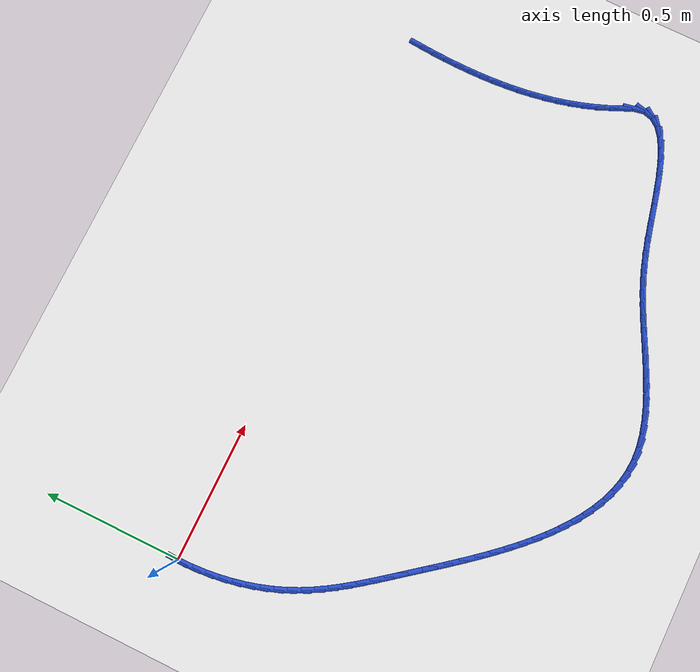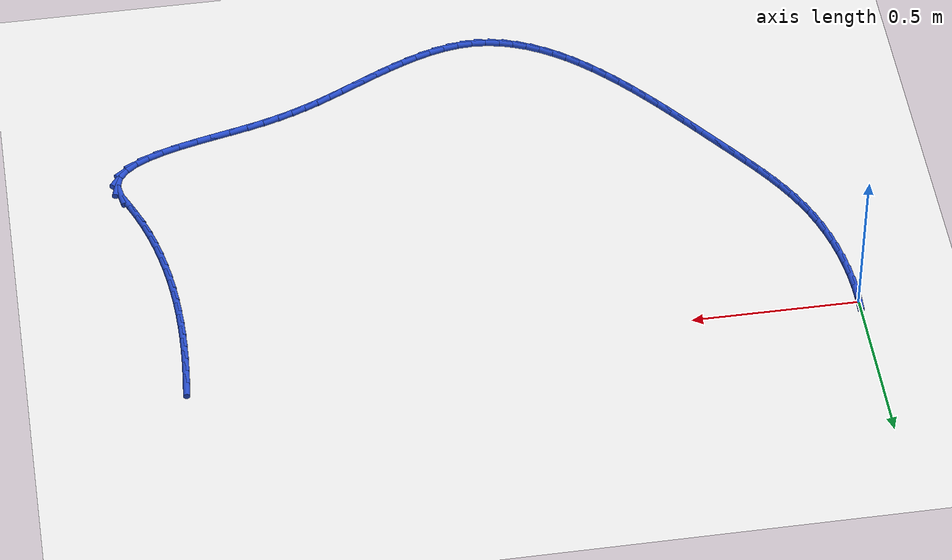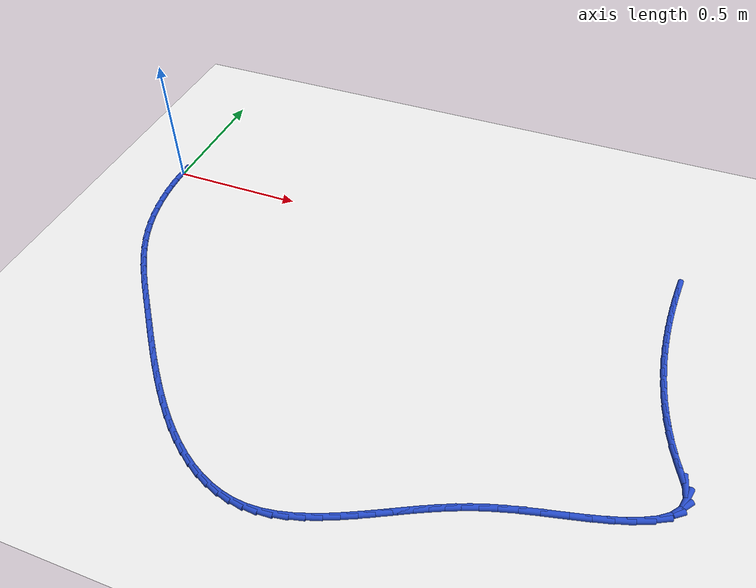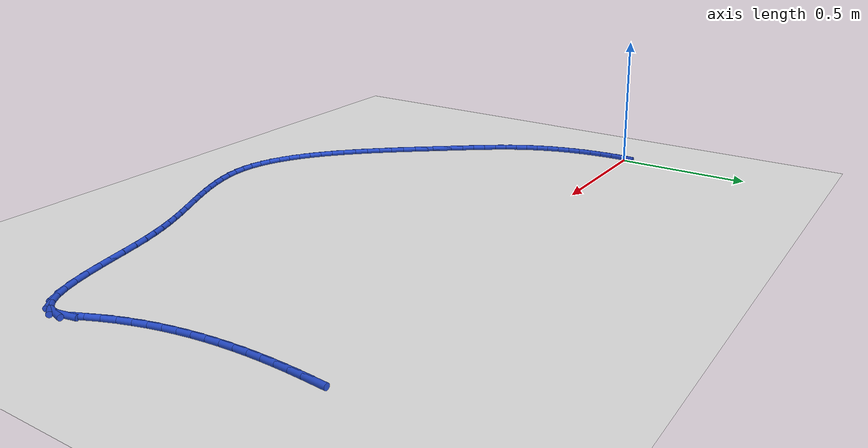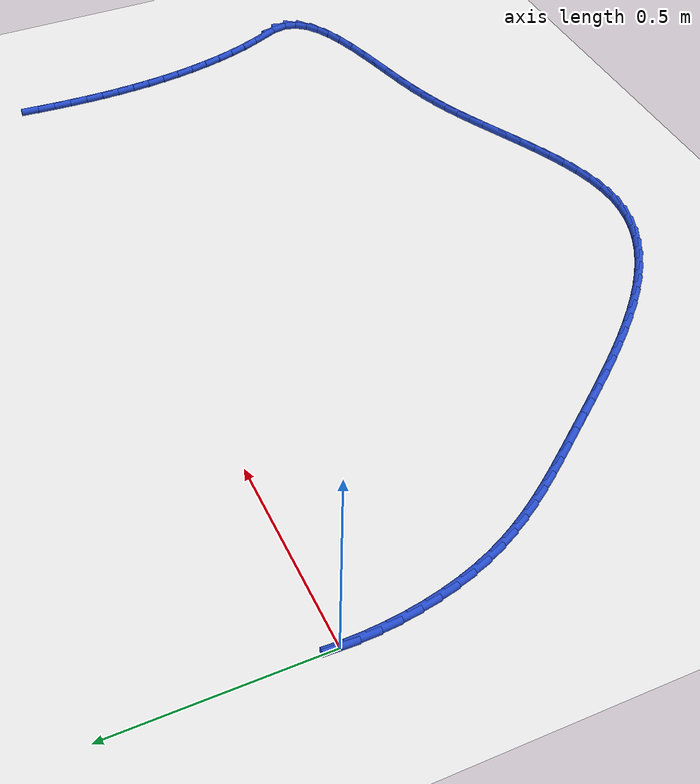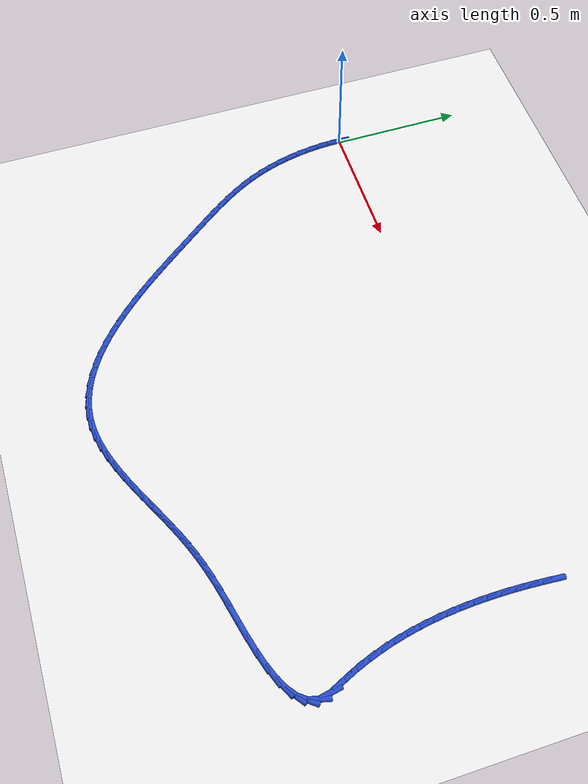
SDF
<sdf version="1.6">
 <world name="default">
  <model name="ground_plane">
   <static>1</static>
   <link name="link">
    <collision name="collision">
     <geometry><plane><normal>0 0 1</normal><size>100 100</size></plane></geometry>
     <surface><friction><ode><mu>100</mu><mu2>50</mu2></ode></friction></surface>
    </collision>
    <visual name="visual">
     <cast_shadows>0</cast_shadows>
     <geometry><plane><normal>0 0 1</normal><size>100 100</size></plane></geometry>
     <material>
      <script><uri>file://media/materials/scripts/gazebo.material</uri><name>Gazebo/WhiteGlow</name></script>
     </material>
    </visual>
   </link>
  </model>
  <model name="line">
   <link name="link_0">
    <pose>1.214306433183765e-17 -4.163336342344337e-17 0.01 0 1.57 1.5372497949093846</pose>
    <collision name="collision">
     <geometry><cylinder><radius>0.01</radius><length>0.08</length></cylinder></geometry>
    </collision>
    <visual name="visual">
     <material>
      <script><name>Gazebo/Blue</name><uri>file://media/materials/scripts/gazebo.material</uri></script>
     </material>
     <geometry><cylinder><radius>0.01</radius><length>0.08</length></cylinder></geometry>
    </visual>
   </link>
   <link name="link_81">
    <pose>1.9968895284810229 0.045796064665575204 0.01 0 1.57 1.4966531099366374</pose>
    <collision name="collision">
     <geometry><cylinder><radius>0.01</radius><length>0.08</length></cylinder></geometry>
    </collision>
    <visual name="visual">
     <material>
      <script><name>Gazebo/Blue</name><uri>file://media/materials/scripts/gazebo.material</uri></script>
     </material>
     <geometry><cylinder><radius>0.01</radius><length>0.08</length></cylinder></geometry>
    </visual>
   </link>
   <link name="link_82">
    <pose>1.9934196872863084 -0.0009173213176486648 0.01 0 1.57 1.5141625841012647</pose>
    <collision name="collision">
     <geometry><cylinder><radius>0.01</radius><length>0.08</length></cylinder></geometry>
    </collision>
    <visual name="visual">
     <material>
      <script><name>Gazebo/Blue</name><uri>file://media/materials/scripts/gazebo.material</uri></script>
     </material>
     <geometry><cylinder><radius>0.01</radius><length>0.08</length></cylinder></geometry>
    </visual>
   </link>
   <link name="link_83">
    <pose>1.9907547981119165 -0.047921798394054825 0.01 0 1.57 1.5336395725088936</pose>
    <collision name="collision">
     <geometry><cylinder><radius>0.01</radius><length>0.08</length></cylinder></geometry>
    </collision>
    <visual name="visual">
     <material>
      <script><name>Gazebo/Blue</name><uri>file://media/materials/scripts/gazebo.material</uri></script>
     </material>
     <geometry><cylinder><radius>0.01</radius><length>0.08</length></cylinder></geometry>
    </visual>
   </link>
   <link name="link_84">
    <pose>1.9889988372093812 -0.09515823640888879 0.01 0 1.57 1.5551243798746</pose>
    <collision name="collision">
     <geometry><cylinder><radius>0.01</radius><length>0.08</length></cylinder></geometry>
    </collision>
    <visual name="visual">
     <material>
      <script><name>Gazebo/Blue</name><uri>file://media/materials/scripts/gazebo.material</uri></script>
     </material>
     <geometry><cylinder><radius>0.01</radius><length>0.08</length></cylinder></geometry>
    </visual>
   </link>
   <link name="link_85">
    <pose>1.9882557808302388 -0.1425675052073952 0.01 0 1.57 -1.5629303055799435</pose>
    <collision name="collision">
     <geometry><cylinder><radius>0.01</radius><length>0.08</length></cylinder></geometry>
    </collision>
    <visual name="visual">
     <material>
      <script><name>Gazebo/Blue</name><uri>file://media/materials/scripts/gazebo.material</uri></script>
     </material>
     <geometry><cylinder><radius>0.01</radius><length>0.08</length></cylinder></geometry>
    </visual>
   </link>
   <link name="link_86">
    <pose>1.988629605226024 -0.19009047463481865 0.01 0 1.57 -1.5372913439885811</pose>
    <collision name="collision">
     <geometry><cylinder><radius>0.01</radius><length>0.08</length></cylinder></geometry>
    </collision>
    <visual name="visual">
     <material>
      <script><name>Gazebo/Blue</name><uri>file://media/materials/scripts/gazebo.material</uri></script>
     </material>
     <geometry><cylinder><radius>0.01</radius><length>0.08</length></cylinder></geometry>
    </visual>
   </link>
   <link name="link_87">
    <pose>1.9902242866482718 -0.2376680145364048 0.01 0 1.57 -1.5095040173540444</pose>
    <collision name="collision">
     <geometry><cylinder><radius>0.01</radius><length>0.08</length></cylinder></geometry>
    </collision>
    <visual name="visual">
     <material>
      <script><name>Gazebo/Blue</name><uri>file://media/materials/scripts/gazebo.material</uri></script>
     </material>
     <geometry><cylinder><radius>0.01</radius><length>0.08</length></cylinder></geometry>
    </visual>
   </link>
   <link name="link_88">
    <pose>1.9931438013485177 -0.2852409947573966 0.01 0 1.57 -1.4795248525656814</pose>
    <collision name="collision">
     <geometry><cylinder><radius>0.01</radius><length>0.08</length></cylinder></geometry>
    </collision>
    <visual name="visual">
     <material>
      <script><name>Gazebo/Blue</name><uri>file://media/materials/scripts/gazebo.material</uri></script>
     </material>
     <geometry><cylinder><radius>0.01</radius><length>0.08</length></cylinder></geometry>
    </visual>
   </link>
   <link name="link_89">
    <pose>1.9974921255782965 -0.3327502851430395 0.01 0 1.57 -1.4473182517553465</pose>
    <collision name="collision">
     <geometry><cylinder><radius>0.01</radius><length>0.08</length></cylinder></geometry>
    </collision>
    <visual name="visual">
     <material>
      <script><name>Gazebo/Blue</name><uri>file://media/materials/scripts/gazebo.material</uri></script>
     </material>
     <geometry><cylinder><radius>0.01</radius><length>0.08</length></cylinder></geometry>
    </visual>
   </link>
   <link name="link_90">
    <pose>2.0033732355891427 -0.3801367555385782 0.01 0 1.57 -1.4128610207556314</pose>
    <collision name="collision">
     <geometry><cylinder><radius>0.01</radius><length>0.08</length></cylinder></geometry>
    </collision>
    <visual name="visual">
     <material>
      <script><name>Gazebo/Blue</name><uri>file://media/materials/scripts/gazebo.material</uri></script>
     </material>
     <geometry><cylinder><radius>0.01</radius><length>0.08</length></cylinder></geometry>
    </visual>
   </link>
   <link name="link_91">
    <pose>2.010891107632592 -0.4273412757892573 0.01 0 1.57 -1.3761473997518283</pose>
    <collision name="collision">
     <geometry><cylinder><radius>0.01</radius><length>0.08</length></cylinder></geometry>
    </collision>
    <visual name="visual">
     <material>
      <script><name>Gazebo/Blue</name><uri>file://media/materials/scripts/gazebo.material</uri></script>
     </material>
     <geometry><cylinder><radius>0.01</radius><length>0.08</length></cylinder></geometry>
    </visual>
   </link>
   <link name="link_92">
    <pose>2.02014971796018 -0.47430471574032257 0.01 0 1.57 -1.3371944623963352</pose>
    <collision name="collision">
     <geometry><cylinder><radius>0.01</radius><length>0.08</length></cylinder></geometry>
    </collision>
    <visual name="visual">
     <material>
      <script><name>Gazebo/Blue</name><uri>file://media/materials/scripts/gazebo.material</uri></script>
     </material>
     <geometry><cylinder><radius>0.01</radius><length>0.08</length></cylinder></geometry>
    </visual>
   </link>
   <link name="link_93">
    <pose>2.0312530428234408 -0.5209679452370166 0.01 0 1.57 -1.2960476444146627</pose>
    <collision name="collision">
     <geometry><cylinder><radius>0.01</radius><length>0.08</length></cylinder></geometry>
    </collision>
    <visual name="visual">
     <material>
      <script><name>Gazebo/Blue</name><uri>file://media/materials/scripts/gazebo.material</uri></script>
     </material>
     <geometry><cylinder><radius>0.01</radius><length>0.08</length></cylinder></geometry>
    </visual>
   </link>
   <link name="link_94">
    <pose>2.04430505847391 -0.5672718341245855 0.01 0 1.57 -1.2527860439796048</pose>
    <collision name="collision">
     <geometry><cylinder><radius>0.01</radius><length>0.08</length></cylinder></geometry>
    </collision>
    <visual name="visual">
     <material>
      <script><name>Gazebo/Blue</name><uri>file://media/materials/scripts/gazebo.material</uri></script>
     </material>
     <geometry><cylinder><radius>0.01</radius><length>0.08</length></cylinder></geometry>
    </visual>
   </link>
   <link name="link_95">
    <pose>2.0594097411631234 -0.6131572522482733 0.01 0 1.57 -1.2075270194920833</pose>
    <collision name="collision">
     <geometry><cylinder><radius>0.01</radius><length>0.08</length></cylinder></geometry>
    </collision>
    <visual name="visual">
     <material>
      <script><name>Gazebo/Blue</name><uri>file://media/materials/scripts/gazebo.material</uri></script>
     </material>
     <geometry><cylinder><radius>0.01</radius><length>0.08</length></cylinder></geometry>
    </visual>
   </link>
   <link name="link_96">
    <pose>2.0766710671426147 -0.6585650694533257 0.01 0 1.57 -1.1604295202884722</pose>
    <collision name="collision">
     <geometry><cylinder><radius>0.01</radius><length>0.08</length></cylinder></geometry>
    </collision>
    <visual name="visual">
     <material>
      <script><name>Gazebo/Blue</name><uri>file://media/materials/scripts/gazebo.material</uri></script>
     </material>
     <geometry><cylinder><radius>0.01</radius><length>0.08</length></cylinder></geometry>
    </visual>
   </link>
   <link name="link_97">
    <pose>2.0961930126639197 -0.703436155584986 0.01 0 1.57 -1.1491910586189085</pose>
    <collision name="collision">
     <geometry><cylinder><radius>0.01</radius><length>0.08</length></cylinder></geometry>
    </collision>
    <visual name="visual">
     <material>
      <script><name>Gazebo/Blue</name><uri>file://media/materials/scripts/gazebo.material</uri></script>
     </material>
     <geometry><cylinder><radius>0.01</radius><length>0.08</length></cylinder></geometry>
    </visual>
   </link>
   <link name="link_98">
    <pose>2.1157920298932265 -0.7471352558151371 0.01 0 1.57 -1.3837965705597794</pose>
    <collision name="collision">
     <geometry><cylinder><radius>0.01</radius><length>0.08</length></cylinder></geometry>
    </collision>
    <visual name="visual">
     <material>
      <script><name>Gazebo/Blue</name><uri>file://media/materials/scripts/gazebo.material</uri></script>
     </material>
     <geometry><cylinder><radius>0.01</radius><length>0.08</length></cylinder></geometry>
    </visual>
   </link>
   <link name="link_99">
    <pose>2.12324189276311 -0.7865086862482448 0.01 0 1.57 1.3222275485650847</pose>
    <collision name="collision">
     <geometry><cylinder><radius>0.01</radius><length>0.08</length></cylinder></geometry>
    </collision>
    <visual name="visual">
     <material>
      <script><name>Gazebo/Blue</name><uri>file://media/materials/scripts/gazebo.material</uri></script>
     </material>
     <geometry><cylinder><radius>0.01</radius><length>0.08</length></cylinder></geometry>
    </visual>
   </link>
   <link name="link_100">
    <pose>2.1145934818000773 -0.8205819710169144 0.01 0 1.57 0.9148410178132784</pose>
    <collision name="collision">
     <geometry><cylinder><radius>0.01</radius><length>0.08</length></cylinder></geometry>
    </collision>
    <visual name="visual">
     <material>
      <script><name>Gazebo/Blue</name><uri>file://media/materials/scripts/gazebo.material</uri></script>
     </material>
     <geometry><cylinder><radius>0.01</radius><length>0.08</length></cylinder></geometry>
    </visual>
   </link>
   <link name="link_101">
    <pose>2.0919816300885397 -0.8499615881406273 0.01 0 1.57 0.6343725745434572</pose>
    <collision name="collision">
     <geometry><cylinder><radius>0.01</radius><length>0.08</length></cylinder></geometry>
    </collision>
    <visual name="visual">
     <material>
      <script><name>Gazebo/Blue</name><uri>file://media/materials/scripts/gazebo.material</uri></script>
     </material>
     <geometry><cylinder><radius>0.01</radius><length>0.08</length></cylinder></geometry>
    </visual>
   </link>
   <link name="link_102">
    <pose>2.0575913953726714 -0.8752670667630128 0.01 0 1.57 0.46108135523860594</pose>
    <collision name="collision">
     <geometry><cylinder><radius>0.01</radius><length>0.08</length></cylinder></geometry>
    </collision>
    <visual name="visual">
     <material>
      <script><name>Gazebo/Blue</name><uri>file://media/materials/scripts/gazebo.material</uri></script>
     </material>
     <geometry><cylinder><radius>0.01</radius><length>0.08</length></cylinder></geometry>
    </visual>
   </link>
   <link name="link_103">
    <pose>2.0136078353966473 -0.8971179360277024 0.01 0 1.57 0.35439383168558597</pose>
    <collision name="collision">
     <geometry><cylinder><radius>0.01</radius><length>0.08</length></cylinder></geometry>
    </collision>
    <visual name="visual">
     <material>
      <script><name>Gazebo/Blue</name><uri>file://media/materials/scripts/gazebo.material</uri></script>
     </material>
     <geometry><cylinder><radius>0.01</radius><length>0.08</length></cylinder></geometry>
    </visual>
   </link>
   <link name="link_104">
    <pose>1.962216007904642 -0.9161337250783267 0.01 0 1.57 0.2884680291625848</pose>
    <collision name="collision">
     <geometry><cylinder><radius>0.01</radius><length>0.08</length></cylinder></geometry>
    </collision>
    <visual name="visual">
     <material>
      <script><name>Gazebo/Blue</name><uri>file://media/materials/scripts/gazebo.material</uri></script>
     </material>
     <geometry><cylinder><radius>0.01</radius><length>0.08</length></cylinder></geometry>
    </visual>
   </link>
   <link name="link_105">
    <pose>1.9056009706408286 -0.932933963058517 0.01 0 1.57 0.24956333196978153</pose>
    <collision name="collision">
     <geometry><cylinder><radius>0.01</radius><length>0.08</length></cylinder></geometry>
    </collision>
    <visual name="visual">
     <material>
      <script><name>Gazebo/Blue</name><uri>file://media/materials/scripts/gazebo.material</uri></script>
     </material>
     <geometry><cylinder><radius>0.01</radius><length>0.08</length></cylinder></geometry>
    </visual>
   </link>
   <link name="link_106">
    <pose>1.8459477813493812 -0.9481381791119039 0.01 0 1.57 0.2309489479931813</pose>
    <collision name="collision">
     <geometry><cylinder><radius>0.01</radius><length>0.08</length></cylinder></geometry>
    </collision>
    <visual name="visual">
     <material>
      <script><name>Gazebo/Blue</name><uri>file://media/materials/scripts/gazebo.material</uri></script>
     </material>
     <geometry><cylinder><radius>0.01</radius><length>0.08</length></cylinder></geometry>
    </visual>
   </link>
   <link name="link_107">
    <pose>1.7854414977744764 -0.9623659023821185 0.01 0 1.57 0.23024807499729882</pose>
    <collision name="collision">
     <geometry><cylinder><radius>0.01</radius><length>0.08</length></cylinder></geometry>
    </collision>
    <visual name="visual">
     <material>
      <script><name>Gazebo/Blue</name><uri>file://media/materials/scripts/gazebo.material</uri></script>
     </material>
     <geometry><cylinder><radius>0.01</radius><length>0.08</length></cylinder></geometry>
    </visual>
   </link>
   <link name="link_108">
    <pose>1.7262671776602867 -0.9762366620127911 0.01 0 1.57 0.24865167845129643</pose>
    <collision name="collision">
     <geometry><cylinder><radius>0.01</radius><length>0.08</length></cylinder></geometry>
    </collision>
    <visual name="visual">
     <material>
      <script><name>Gazebo/Blue</name><uri>file://media/materials/scripts/gazebo.material</uri></script>
     </material>
     <geometry><cylinder><radius>0.01</radius><length>0.08</length></cylinder></geometry>
    </visual>
   </link>
   <link name="link_109">
    <pose>1.670606252163663 -0.9903693151599139 0.01 0 1.57 0.2842362058194474</pose>
    <collision name="collision">
     <geometry><cylinder><radius>0.01</radius><length>0.08</length></cylinder></geometry>
    </collision>
    <visual name="visual">
     <material>
      <script><name>Gazebo/Blue</name><uri>file://media/materials/scripts/gazebo.material</uri></script>
     </material>
     <geometry><cylinder><radius>0.01</radius><length>0.08</length></cylinder></geometry>
    </visual>
   </link>
   <link name="link_110">
    <pose>1.6197688703590858 -1.0052212749723732 0.01 0 1.57 0.32351927973622296</pose>
    <collision name="collision">
     <geometry><cylinder><radius>0.01</radius><length>0.08</length></cylinder></geometry>
    </collision>
    <visual name="visual">
     <material>
      <script><name>Gazebo/Blue</name><uri>file://media/materials/scripts/gazebo.material</uri></script>
     </material>
     <geometry><cylinder><radius>0.01</radius><length>0.08</length></cylinder></geometry>
    </visual>
   </link>
   <link name="link_111">
    <pose>1.5730683410350141 -1.0208799505511739 0.01 0 1.57 0.362347438857566</pose>
    <collision name="collision">
     <geometry><cylinder><radius>0.01</radius><length>0.08</length></cylinder></geometry>
    </collision>
    <visual name="visual">
     <material>
      <script><name>Gazebo/Blue</name><uri>file://media/materials/scripts/gazebo.material</uri></script>
     </material>
     <geometry><cylinder><radius>0.01</radius><length>0.08</length></cylinder></geometry>
    </visual>
   </link>
   <link name="link_112">
    <pose>1.5295393948636737 -1.037381131931249 0.01 0 1.57 0.3981210116068701</pose>
    <collision name="collision">
     <geometry><cylinder><radius>0.01</radius><length>0.08</length></cylinder></geometry>
    </collision>
    <visual name="visual">
     <material>
      <script><name>Gazebo/Blue</name><uri>file://media/materials/scripts/gazebo.material</uri></script>
     </material>
     <geometry><cylinder><radius>0.01</radius><length>0.08</length></cylinder></geometry>
    </visual>
   </link>
   <link name="link_113">
    <pose>1.4882167625172893 -1.0547606091475323 0.01 0 1.57 0.428170144558688</pose>
    <collision name="collision">
     <geometry><cylinder><radius>0.01</radius><length>0.08</length></cylinder></geometry>
    </collision>
    <visual name="visual">
     <material>
      <script><name>Gazebo/Blue</name><uri>file://media/materials/scripts/gazebo.material</uri></script>
     </material>
     <geometry><cylinder><radius>0.01</radius><length>0.08</length></cylinder></geometry>
    </visual>
   </link>
   <link name="link_114">
    <pose>1.448135174668085 -1.073054172234957 0.01 0 1.57 0.4503062951508775</pose>
    <collision name="collision">
     <geometry><cylinder><radius>0.01</radius><length>0.08</length></cylinder></geometry>
    </collision>
    <visual name="visual">
     <material>
      <script><name>Gazebo/Blue</name><uri>file://media/materials/scripts/gazebo.material</uri></script>
     </material>
     <geometry><cylinder><radius>0.01</radius><length>0.08</length></cylinder></geometry>
    </visual>
   </link>
   <link name="link_115">
    <pose>1.4083293619882855 -1.092297611228456 0.01 0 1.57 0.46327969388796797</pose>
    <collision name="collision">
     <geometry><cylinder><radius>0.01</radius><length>0.08</length></cylinder></geometry>
    </collision>
    <visual name="visual">
     <material>
      <script><name>Gazebo/Blue</name><uri>file://media/materials/scripts/gazebo.material</uri></script>
     </material>
     <geometry><cylinder><radius>0.01</radius><length>0.08</length></cylinder></geometry>
    </visual>
   </link>
   <link name="link_116">
    <pose>1.3678346446470298 -1.1125263500503806 0.01 0 1.57 0.46629248501478004</pose>
    <collision name="collision">
     <geometry><cylinder><radius>0.01</radius><length>0.08</length></cylinder></geometry>
    </collision>
    <visual name="visual">
     <material>
      <script><name>Gazebo/Blue</name><uri>file://media/materials/scripts/gazebo.material</uri></script>
     </material>
     <geometry><cylinder><radius>0.01</radius><length>0.08</length></cylinder></geometry>
    </visual>
   </link>
   <link name="link_117">
    <pose>1.3259902142015945 -1.1335870904500733 0.01 0 1.57 0.4583422722414864</pose>
    <collision name="collision">
     <geometry><cylinder><radius>0.01</radius><length>0.08</length></cylinder></geometry>
    </collision>
    <visual name="visual">
     <material>
      <script><name>Gazebo/Blue</name><uri>file://media/materials/scripts/gazebo.material</uri></script>
     </material>
     <geometry><cylinder><radius>0.01</radius><length>0.08</length></cylinder></geometry>
    </visual>
   </link>
   <link name="link_118">
    <pose>1.2829344301707974 -1.1548302034258169 0.01 0 1.57 0.4396535066253167</pose>
    <collision name="collision">
     <geometry><cylinder><radius>0.01</radius><length>0.08</length></cylinder></geometry>
    </collision>
    <visual name="visual">
     <material>
      <script><name>Gazebo/Blue</name><uri>file://media/materials/scripts/gazebo.material</uri></script>
     </material>
     <geometry><cylinder><radius>0.01</radius><length>0.08</length></cylinder></geometry>
    </visual>
   </link>
   <link name="link_119">
    <pose>1.2389354663173946 -1.1755254376232802 0.01 0 1.57 0.41000758204785237</pose>
    <collision name="collision">
     <geometry><cylinder><radius>0.01</radius><length>0.08</length></cylinder></geometry>
    </collision>
    <visual name="visual">
     <material>
      <script><name>Gazebo/Blue</name><uri>file://media/materials/scripts/gazebo.material</uri></script>
     </material>
     <geometry><cylinder><radius>0.01</radius><length>0.08</length></cylinder></geometry>
    </visual>
   </link>
   <link name="link_120">
    <pose>1.1942614964041418 -1.1949425416881339 0.01 0 1.57 0.36852488114829324</pose>
    <collision name="collision">
     <geometry><cylinder><radius>0.01</radius><length>0.08</length></cylinder></geometry>
    </collision>
    <visual name="visual">
     <material>
      <script><name>Gazebo/Blue</name><uri>file://media/materials/scripts/gazebo.material</uri></script>
     </material>
     <geometry><cylinder><radius>0.01</radius><length>0.08</length></cylinder></geometry>
    </visual>
   </link>
   <link name="link_121">
    <pose>1.149180694193794 -1.212351264266047 0.01 0 1.57 0.3137070650862972</pose>
    <collision name="collision">
     <geometry><cylinder><radius>0.01</radius><length>0.08</length></cylinder></geometry>
    </collision>
    <visual name="visual">
     <material>
      <script><name>Gazebo/Blue</name><uri>file://media/materials/scripts/gazebo.material</uri></script>
     </material>
     <geometry><cylinder><radius>0.01</radius><length>0.08</length></cylinder></geometry>
    </visual>
   </link>
   <link name="link_122">
    <pose>1.1039612334491087 -1.2270213540026884 0.01 0 1.57 0.24349024345897183</pose>
    <collision name="collision">
     <geometry><cylinder><radius>0.01</radius><length>0.08</length></cylinder></geometry>
    </collision>
    <visual name="visual">
     <material>
      <script><name>Gazebo/Blue</name><uri>file://media/materials/scripts/gazebo.material</uri></script>
     </material>
     <geometry><cylinder><radius>0.01</radius><length>0.08</length></cylinder></geometry>
    </visual>
   </link>
   <link name="link_123">
    <pose>1.0588712879328406 -1.2382225595437286 0.01 0 1.57 0.15540963607825006</pose>
    <collision name="collision">
     <geometry><cylinder><radius>0.01</radius><length>0.08</length></cylinder></geometry>
    </collision>
    <visual name="visual">
     <material>
      <script><name>Gazebo/Blue</name><uri>file://media/materials/scripts/gazebo.material</uri></script>
     </material>
     <geometry><cylinder><radius>0.01</radius><length>0.08</length></cylinder></geometry>
    </visual>
   </link>
   <link name="link_124">
    <pose>1.0141790314077457 -1.2452246295348373 0.01 0 1.57 0.04736130728329186</pose>
    <collision name="collision">
     <geometry><cylinder><radius>0.01</radius><length>0.08</length></cylinder></geometry>
    </collision>
    <visual name="visual">
     <material>
      <script><name>Gazebo/Blue</name><uri>file://media/materials/scripts/gazebo.material</uri></script>
     </material>
     <geometry><cylinder><radius>0.01</radius><length>0.08</length></cylinder></geometry>
    </visual>
   </link>
   <link name="link_125">
    <pose>0.9701488920817932 -1.24731151508632 0.01 0 1.57 -0.07115327656501465</pose>
    <collision name="collision">
     <geometry><cylinder><radius>0.01</radius><length>0.08</length></cylinder></geometry>
    </collision>
    <visual name="visual">
     <material>
      <script><name>Gazebo/Blue</name><uri>file://media/materials/scripts/gazebo.material</uri></script>
     </material>
     <geometry><cylinder><radius>0.01</radius><length>0.08</length></cylinder></geometry>
    </visual>
   </link>
   <link name="link_126">
    <pose>0.9269230645978989 -1.2442306548246733 0.01 0 1.57 -0.18514362894296818</pose>
    <collision name="collision">
     <geometry><cylinder><radius>0.01</radius><length>0.08</length></cylinder></geometry>
    </collision>
    <visual name="visual">
     <material>
      <script><name>Gazebo/Blue</name><uri>file://media/materials/scripts/gazebo.material</uri></script>
     </material>
     <geometry><cylinder><radius>0.01</radius><length>0.08</length></cylinder></geometry>
    </visual>
   </link>
   <link name="link_127">
    <pose>0.8844972944974335 -1.2362847958163976 0.01 0 1.57 -0.29109924835674933</pose>
    <collision name="collision">
     <geometry><cylinder><radius>0.01</radius><length>0.08</length></cylinder></geometry>
    </collision>
    <visual name="visual">
     <material>
      <script><name>Gazebo/Blue</name><uri>file://media/materials/scripts/gazebo.material</uri></script>
     </material>
     <geometry><cylinder><radius>0.01</radius><length>0.08</length></cylinder></geometry>
    </visual>
   </link>
   <link name="link_128">
    <pose>0.8428586890082191 -1.2238094400467256 0.01 0 1.57 -0.38731466590016295</pose>
    <collision name="collision">
     <geometry><cylinder><radius>0.01</radius><length>0.08</length></cylinder></geometry>
    </collision>
    <visual name="visual">
     <material>
      <script><name>Gazebo/Blue</name><uri>file://media/materials/scripts/gazebo.material</uri></script>
     </material>
     <geometry><cylinder><radius>0.01</radius><length>0.08</length></cylinder></geometry>
    </visual>
   </link>
   <link name="link_129">
    <pose>0.8019943553580785 -1.2071400895008888 0.01 0 1.57 -0.4731052501599599</pose>
    <collision name="collision">
     <geometry><cylinder><radius>0.01</radius><length>0.08</length></cylinder></geometry>
    </collision>
    <visual name="visual">
     <material>
      <script><name>Gazebo/Blue</name><uri>file://media/materials/scripts/gazebo.material</uri></script>
     </material>
     <geometry><cylinder><radius>0.01</radius><length>0.08</length></cylinder></geometry>
    </visual>
   </link>
   <link name="link_130">
    <pose>0.7618914007748342 -1.186612246164119 0.01 0 1.57 -0.5485657070501241</pose>
    <collision name="collision">
     <geometry><cylinder><radius>0.01</radius><length>0.08</length></cylinder></geometry>
    </collision>
    <visual name="visual">
     <material>
      <script><name>Gazebo/Blue</name><uri>file://media/materials/scripts/gazebo.material</uri></script>
     </material>
     <geometry><cylinder><radius>0.01</radius><length>0.08</length></cylinder></geometry>
    </visual>
   </link>
   <link name="link_131">
    <pose>0.7225369324863086 -1.1625614120216485 0.01 0 1.57 -0.6142816074582128</pose>
    <collision name="collision">
     <geometry><cylinder><radius>0.01</radius><length>0.08</length></cylinder></geometry>
    </collision>
    <visual name="visual">
     <material>
      <script><name>Gazebo/Blue</name><uri>file://media/materials/scripts/gazebo.material</uri></script>
     </material>
     <geometry><cylinder><radius>0.01</radius><length>0.08</length></cylinder></geometry>
    </visual>
   </link>
   <link name="link_132">
    <pose>0.6839180577203258 -1.1353230890587103 0.01 0 1.57 -0.6710837827032381</pose>
    <collision name="collision">
     <geometry><cylinder><radius>0.01</radius><length>0.08</length></cylinder></geometry>
    </collision>
    <visual name="visual">
     <material>
      <script><name>Gazebo/Blue</name><uri>file://media/materials/scripts/gazebo.material</uri></script>
     </material>
     <geometry><cylinder><radius>0.01</radius><length>0.08</length></cylinder></geometry>
    </visual>
   </link>
   <link name="link_133">
    <pose>0.6460218837047081 -1.1052327792605354 0.01 0 1.57 -0.7198757566521322</pose>
    <collision name="collision">
     <geometry><cylinder><radius>0.01</radius><length>0.08</length></cylinder></geometry>
    </collision>
    <visual name="visual">
     <material>
      <script><name>Gazebo/Blue</name><uri>file://media/materials/scripts/gazebo.material</uri></script>
     </material>
     <geometry><cylinder><radius>0.01</radius><length>0.08</length></cylinder></geometry>
    </visual>
   </link>
   <link name="link_134">
    <pose>0.6088355176672781 -1.0726259846123565 0.01 0 1.57 -0.7615286868689193</pose>
    <collision name="collision">
     <geometry><cylinder><radius>0.01</radius><length>0.08</length></cylinder></geometry>
    </collision>
    <visual name="visual">
     <material>
      <script><name>Gazebo/Blue</name><uri>file://media/materials/scripts/gazebo.material</uri></script>
     </material>
     <geometry><cylinder><radius>0.01</radius><length>0.08</length></cylinder></geometry>
    </visual>
   </link>
   <link name="link_135">
    <pose>0.5723460668358585 -1.0378382070994052 0.01 0 1.57 -0.7968256753579323</pose>
    <collision name="collision">
     <geometry><cylinder><radius>0.01</radius><length>0.08</length></cylinder></geometry>
    </collision>
    <visual name="visual">
     <material>
      <script><name>Gazebo/Blue</name><uri>file://media/materials/scripts/gazebo.material</uri></script>
     </material>
     <geometry><cylinder><radius>0.01</radius><length>0.08</length></cylinder></geometry>
    </visual>
   </link>
   <link name="link_136">
    <pose>0.5365406384382718 -1.0012049487069135 0.01 0 1.57 -0.8264373316462962</pose>
    <collision name="collision">
     <geometry><cylinder><radius>0.01</radius><length>0.08</length></cylinder></geometry>
    </collision>
    <visual name="visual">
     <material>
      <script><name>Gazebo/Blue</name><uri>file://media/materials/scripts/gazebo.material</uri></script>
     </material>
     <geometry><cylinder><radius>0.01</radius><length>0.08</length></cylinder></geometry>
    </visual>
   </link>
   <link name="link_137">
    <pose>0.5014063397023419 -0.9630617114201142 0.01 0 1.57 -0.8509148388305234</pose>
    <collision name="collision">
     <geometry><cylinder><radius>0.01</radius><length>0.08</length></cylinder></geometry>
    </collision>
    <visual name="visual">
     <material>
      <script><name>Gazebo/Blue</name><uri>file://media/materials/scripts/gazebo.material</uri></script>
     </material>
     <geometry><cylinder><radius>0.01</radius><length>0.08</length></cylinder></geometry>
    </visual>
   </link>
   <link name="link_138">
    <pose>0.46693027785589125 -0.9237439972242396 0.01 0 1.57 -0.8706913758072121</pose>
    <collision name="collision">
     <geometry><cylinder><radius>0.01</radius><length>0.08</length></cylinder></geometry>
    </collision>
    <visual name="visual">
     <material>
      <script><name>Gazebo/Blue</name><uri>file://media/materials/scripts/gazebo.material</uri></script>
     </material>
     <geometry><cylinder><radius>0.01</radius><length>0.08</length></cylinder></geometry>
    </visual>
   </link>
   <link name="link_139">
    <pose>0.4330995601267422 -0.8835873081045209 0.01 0 1.57 -0.8860862273641278</pose>
    <collision name="collision">
     <geometry><cylinder><radius>0.01</radius><length>0.08</length></cylinder></geometry>
    </collision>
    <visual name="visual">
     <material>
      <script><name>Gazebo/Blue</name><uri>file://media/materials/scripts/gazebo.material</uri></script>
     </material>
     <geometry><cylinder><radius>0.01</radius><length>0.08</length></cylinder></geometry>
    </visual>
   </link>
   <link name="link_140">
    <pose>0.3999012937427178 -0.8429271460461906 0.01 0 1.57 -0.8973081454824237</pose>
    <collision name="collision">
     <geometry><cylinder><radius>0.01</radius><length>0.08</length></cylinder></geometry>
    </collision>
    <visual name="visual">
     <material>
      <script><name>Gazebo/Blue</name><uri>file://media/materials/scripts/gazebo.material</uri></script>
     </material>
     <geometry><cylinder><radius>0.01</radius><length>0.08</length></cylinder></geometry>
    </visual>
   </link>
   <link name="link_141">
    <pose>0.36732258593164024 -0.80209901303448 0.01 0 1.57 -0.9044557666154616</pose>
    <collision name="collision">
     <geometry><cylinder><radius>0.01</radius><length>0.08</length></cylinder></geometry>
    </collision>
    <visual name="visual">
     <material>
      <script><name>Gazebo/Blue</name><uri>file://media/materials/scripts/gazebo.material</uri></script>
     </material>
     <geometry><cylinder><radius>0.01</radius><length>0.08</length></cylinder></geometry>
    </visual>
   </link>
   <link name="link_142">
    <pose>0.33535054392133373 -0.7614384110546228 0.01 0 1.57 -0.907513419408656</pose>
    <collision name="collision">
     <geometry><cylinder><radius>0.01</radius><length>0.08</length></cylinder></geometry>
    </collision>
    <visual name="visual">
     <material>
      <script><name>Gazebo/Blue</name><uri>file://media/materials/scripts/gazebo.material</uri></script>
     </material>
     <geometry><cylinder><radius>0.01</radius><length>0.08</length></cylinder></geometry>
    </visual>
   </link>
   <link name="link_143">
    <pose>0.3039722749396202 -0.7212808420918502 0.01 0 1.57 -0.9068447585924151</pose>
    <collision name="collision">
     <geometry><cylinder><radius>0.01</radius><length>0.08</length></cylinder></geometry>
    </collision>
    <visual name="visual">
     <material>
      <script><name>Gazebo/Blue</name><uri>file://media/materials/scripts/gazebo.material</uri></script>
     </material>
     <geometry><cylinder><radius>0.01</radius><length>0.08</length></cylinder></geometry>
    </visual>
   </link>
   <link name="link_144">
    <pose>0.2731847615955743 -0.6819335734343961 0.01 0 1.57 -0.9087708255430091</pose>
    <collision name="collision">
     <geometry><cylinder><radius>0.01</radius><length>0.08</length></cylinder></geometry>
    </collision>
    <visual name="visual">
     <material>
      <script><name>Gazebo/Blue</name><uri>file://media/materials/scripts/gazebo.material</uri></script>
     </material>
     <geometry><cylinder><radius>0.01</radius><length>0.08</length></cylinder></geometry>
    </visual>
   </link>
   <link name="link_145">
    <pose>0.24311051708808926 -0.6433449679315624 0.01 0 1.57 -0.9180337683959904</pose>
    <collision name="collision">
     <geometry><cylinder><radius>0.01</radius><length>0.08</length></cylinder></geometry>
    </collision>
    <visual name="visual">
     <material>
      <script><name>Gazebo/Blue</name><uri>file://media/materials/scripts/gazebo.material</uri></script>
     </material>
     <geometry><cylinder><radius>0.01</radius><length>0.08</length></cylinder></geometry>
    </visual>
   </link>
   <link name="link_146">
    <pose>0.21395844620526197 -0.6052163862884152 0.01 0 1.57 -0.9350894022718842</pose>
    <collision name="collision">
     <geometry><cylinder><radius>0.01</radius><length>0.08</length></cylinder></geometry>
    </collision>
    <visual name="visual">
     <material>
      <script><name>Gazebo/Blue</name><uri>file://media/materials/scripts/gazebo.material</uri></script>
     </material>
     <geometry><cylinder><radius>0.01</radius><length>0.08</length></cylinder></geometry>
    </visual>
   </link>
   <link name="link_147">
    <pose>0.18593915708560424 -0.5672443191618117 0.01 0 1.57 -0.9602014393907106</pose>
    <collision name="collision">
     <geometry><cylinder><radius>0.01</radius><length>0.08</length></cylinder></geometry>
    </collision>
    <visual name="visual">
     <material>
      <script><name>Gazebo/Blue</name><uri>file://media/materials/scripts/gazebo.material</uri></script>
     </material>
     <geometry><cylinder><radius>0.01</radius><length>0.08</length></cylinder></geometry>
    </visual>
   </link>
   <link name="link_148">
    <pose>0.15926325786762635 -0.5291252572086077 0.01 0 1.57 -0.9934796797822932</pose>
    <collision name="collision">
     <geometry><cylinder><radius>0.01</radius><length>0.08</length></cylinder></geometry>
    </collision>
    <visual name="visual">
     <material>
      <script><name>Gazebo/Blue</name><uri>file://media/materials/scripts/gazebo.material</uri></script>
     </material>
     <geometry><cylinder><radius>0.01</radius><length>0.08</length></cylinder></geometry>
    </visual>
   </link>
   <link name="link_149">
    <pose>0.134141356689839 -0.49055569108565916 0.01 0 1.57 -1.0348174020646008</pose>
    <collision name="collision">
     <geometry><cylinder><radius>0.01</radius><length>0.08</length></cylinder></geometry>
    </collision>
    <visual name="visual">
     <material>
      <script><name>Gazebo/Blue</name><uri>file://media/materials/scripts/gazebo.material</uri></script>
     </material>
     <geometry><cylinder><radius>0.01</radius><length>0.08</length></cylinder></geometry>
    </visual>
   </link>
   <link name="link_150">
    <pose>0.11078406169075308 -0.4512321114498223 0.01 0 1.57 -1.083822629328711</pose>
    <collision name="collision">
     <geometry><cylinder><radius>0.01</radius><length>0.08</length></cylinder></geometry>
    </collision>
    <visual name="visual">
     <material>
      <script><name>Gazebo/Blue</name><uri>file://media/materials/scripts/gazebo.material</uri></script>
     </material>
     <geometry><cylinder><radius>0.01</radius><length>0.08</length></cylinder></geometry>
    </visual>
   </link>
   <link name="link_151">
    <pose>0.08940198100887892 -0.41085100895795224 0.01 0 1.57 -1.1397091912671478</pose>
    <collision name="collision">
     <geometry><cylinder><radius>0.01</radius><length>0.08</length></cylinder></geometry>
    </collision>
    <visual name="visual">
     <material>
      <script><name>Gazebo/Blue</name><uri>file://media/materials/scripts/gazebo.material</uri></script>
     </material>
     <geometry><cylinder><radius>0.01</radius><length>0.08</length></cylinder></geometry>
    </visual>
   </link>
   <link name="link_152">
    <pose>0.07020453808445269 -0.36911176416996144 0.01 0 1.57 -1.1983418262124914</pose>
    <collision name="collision">
     <geometry><cylinder><radius>0.01</radius><length>0.08</length></cylinder></geometry>
    </collision>
    <visual name="visual">
     <material>
      <script><name>Gazebo/Blue</name><uri>file://media/materials/scripts/gazebo.material</uri></script>
     </material>
     <geometry><cylinder><radius>0.01</radius><length>0.08</length></cylinder></geometry>
    </visual>
   </link>
   <link name="link_153">
    <pose>0.05332344720166953 -0.32590331808664946 0.01 0 1.57 -1.25453748119381</pose>
    <collision name="collision">
     <geometry><cylinder><radius>0.01</radius><length>0.08</length></cylinder></geometry>
    </collision>
    <visual name="visual">
     <material>
      <script><name>Gazebo/Blue</name><uri>file://media/materials/scripts/gazebo.material</uri></script>
     </material>
     <geometry><cylinder><radius>0.01</radius><length>0.08</length></cylinder></geometry>
    </visual>
   </link>
   <link name="link_154">
    <pose>0.038765999856933686 -0.2814181234146742 0.01 0 1.57 -1.3082863103968867</pose>
    <collision name="collision">
     <geometry><cylinder><radius>0.01</radius><length>0.08</length></cylinder></geometry>
    </collision>
    <visual name="visual">
     <material>
      <script><name>Gazebo/Blue</name><uri>file://media/materials/scripts/gazebo.material</uri></script>
     </material>
     <geometry><cylinder><radius>0.01</radius><length>0.08</length></cylinder></geometry>
    </visual>
   </link>
   <link name="link_155">
    <pose>0.02652830622725386 -0.23587590810009132 0.01 0 1.57 -1.3600459696241014</pose>
    <collision name="collision">
     <geometry><cylinder><radius>0.01</radius><length>0.08</length></cylinder></geometry>
    </collision>
    <visual name="visual">
     <material>
      <script><name>Gazebo/Blue</name><uri>file://media/materials/scripts/gazebo.material</uri></script>
     </material>
     <geometry><cylinder><radius>0.01</radius><length>0.08</length></cylinder></geometry>
    </visual>
   </link>
   <link name="link_156">
    <pose>0.016606476489638616 -0.18949640008895532 0.01 0 1.57 -1.4102676937215</pose>
    <collision name="collision">
     <geometry><cylinder><radius>0.01</radius><length>0.08</length></cylinder></geometry>
    </collision>
    <visual name="visual">
     <material>
      <script><name>Gazebo/Blue</name><uri>file://media/materials/scripts/gazebo.material</uri></script>
     </material>
     <geometry><cylinder><radius>0.01</radius><length>0.08</length></cylinder></geometry>
    </visual>
   </link>
   <link name="link_157">
    <pose>0.00899662082109702 -0.1424993273273233 0.01 0 1.57 -1.4593957254004957</pose>
    <collision name="collision">
     <geometry><cylinder><radius>0.01</radius><length>0.08</length></cylinder></geometry>
    </collision>
    <visual name="visual">
     <material>
      <script><name>Gazebo/Blue</name><uri>file://media/materials/scripts/gazebo.material</uri></script>
     </material>
     <geometry><cylinder><radius>0.01</radius><length>0.08</length></cylinder></geometry>
    </visual>
   </link>
   <link name="link_158">
    <pose>0.0036948493986375753 -0.09510441776124977 0.01 0 1.57 -1.5078694942002198</pose>
    <collision name="collision">
     <geometry><cylinder><radius>0.01</radius><length>0.08</length></cylinder></geometry>
    </collision>
    <visual name="visual">
     <material>
      <script><name>Gazebo/Blue</name><uri>file://media/materials/scripts/gazebo.material</uri></script>
     </material>
     <geometry><cylinder><radius>0.01</radius><length>0.08</length></cylinder></geometry>
    </visual>
   </link>
   <link name="link_159">
    <pose>0.0006972723992690099 -0.04753139933679029 0.01 0 1.57 -1.5561276572919858</pose>
    <collision name="collision">
     <geometry><cylinder><radius>0.01</radius><length>0.08</length></cylinder></geometry>
    </collision>
    <visual name="visual">
     <material>
      <script><name>Gazebo/Blue</name><uri>file://media/materials/scripts/gazebo.material</uri></script>
     </material>
     <geometry><cylinder><radius>0.01</radius><length>0.08</length></cylinder></geometry>
    </visual>
   </link>
   <link name="link_160">
    <pose>2.42861286636753e-17 -1.942890293094024e-16 0.01 0 1.57 1.5369792975142091</pose>
    <collision name="collision">
     <geometry><cylinder><radius>0.01</radius><length>0.08</length></cylinder></geometry>
    </collision>
    <visual name="visual">
     <material>
      <script><name>Gazebo/Blue</name><uri>file://media/materials/scripts/gazebo.material</uri></script>
     </material>
     <geometry><cylinder><radius>0.01</radius><length>0.08</length></cylinder></geometry>
    </visual>
   </link>
  </model>
 </world>
</sdf>
